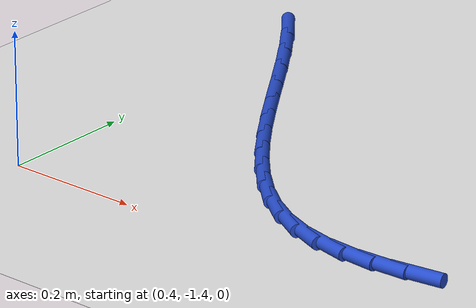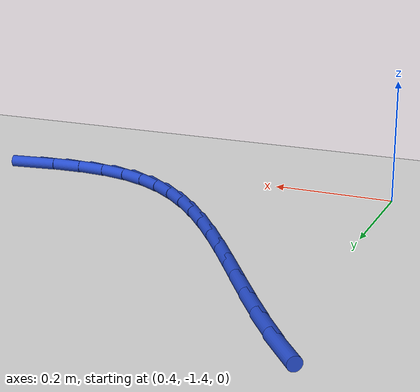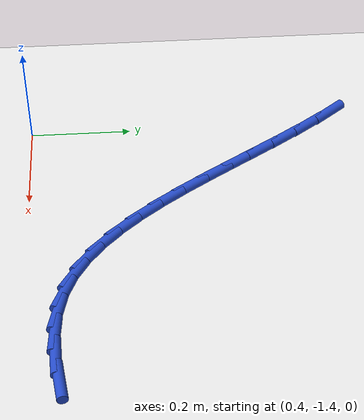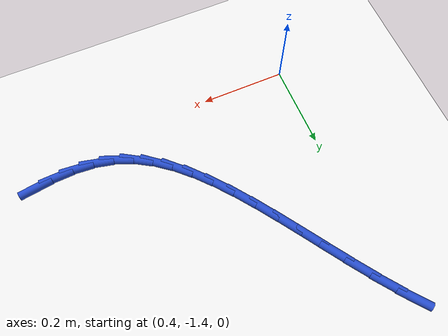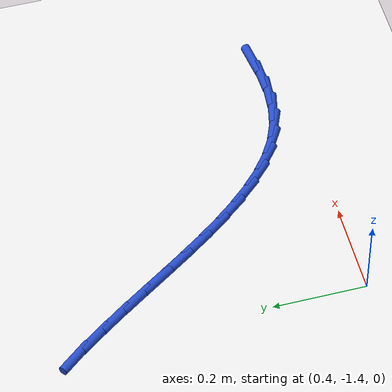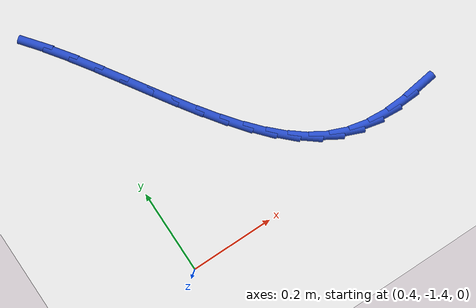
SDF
<sdf version="1.6">
 <world name="default">
  <model name="ground_plane">
   <static>1</static>
   <link name="link">
    <collision name="collision">
     <geometry><plane><normal>0 0 1</normal><size>100 100</size></plane></geometry>
     <surface><friction><ode><mu>100</mu><mu2>50</mu2></ode></friction></surface>
    </collision>
    <visual name="visual">
     <cast_shadows>0</cast_shadows>
     <geometry><plane><normal>0 0 1</normal><size>100 100</size></plane></geometry>
     <material>
      <script><uri>file://media/materials/scripts/gazebo.material</uri><name>Gazebo/WhiteGlow</name></script>
     </material>
    </visual>
   </link>
  </model>
  <model name="line">
   <link name="link_107">
    <pose>1.0430760242254884 -1.3357134529709138 0.01 0 1.57 0.13709894157882074</pose>
    <collision name="collision">
     <geometry><cylinder><radius>0.01</radius><length>0.08</length></cylinder></geometry>
    </collision>
    <visual name="visual">
     <material>
      <script><name>Gazebo/Blue</name><uri>file://media/materials/scripts/gazebo.material</uri></script>
     </material>
     <geometry><cylinder><radius>0.01</radius><length>0.08</length></cylinder></geometry>
    </visual>
   </link>
   <link name="link_108">
    <pose>0.9921345688481847 -1.3427415615859193 0.01 0 1.57 0.04142560302856046</pose>
    <collision name="collision">
     <geometry><cylinder><radius>0.01</radius><length>0.08</length></cylinder></geometry>
    </collision>
    <visual name="visual">
     <material>
      <script><name>Gazebo/Blue</name><uri>file://media/materials/scripts/gazebo.material</uri></script>
     </material>
     <geometry><cylinder><radius>0.01</radius><length>0.08</length></cylinder></geometry>
    </visual>
   </link>
   <link name="link_109">
    <pose>0.943071536547166 -1.344775190708993 0.01 0 1.57 -0.0796514640936623</pose>
    <collision name="collision">
     <geometry><cylinder><radius>0.01</radius><length>0.08</length></cylinder></geometry>
    </collision>
    <visual name="visual">
     <material>
      <script><name>Gazebo/Blue</name><uri>file://media/materials/scripts/gazebo.material</uri></script>
     </material>
     <geometry><cylinder><radius>0.01</radius><length>0.08</length></cylinder></geometry>
    </visual>
   </link>
   <link name="link_110">
    <pose>0.8960161954813696 -1.3410192174612627 0.01 0 1.57 -0.22626862827127428</pose>
    <collision name="collision">
     <geometry><cylinder><radius>0.01</radius><length>0.08</length></cylinder></geometry>
    </collision>
    <visual name="visual">
     <material>
      <script><name>Gazebo/Blue</name><uri>file://media/materials/scripts/gazebo.material</uri></script>
     </material>
     <geometry><cylinder><radius>0.01</radius><length>0.08</length></cylinder></geometry>
    </visual>
   </link>
   <link name="link_111">
    <pose>0.8510978138097305 -1.3306785189638561 0.01 0 1.57 -0.39137221240490744</pose>
    <collision name="collision">
     <geometry><cylinder><radius>0.01</radius><length>0.08</length></cylinder></geometry>
    </collision>
    <visual name="visual">
     <material>
      <script><name>Gazebo/Blue</name><uri>file://media/materials/scripts/gazebo.material</uri></script>
     </material>
     <geometry><cylinder><radius>0.01</radius><length>0.08</length></cylinder></geometry>
    </visual>
   </link>
   <link name="link_112">
    <pose>0.8084177955625681 -1.3130661872734468 0.01 0 1.57 -0.544879120453735</pose>
    <collision name="collision">
     <geometry><cylinder><radius>0.01</radius><length>0.08</length></cylinder></geometry>
    </collision>
    <visual name="visual">
     <material>
      <script><name>Gazebo/Blue</name><uri>file://media/materials/scripts/gazebo.material</uri></script>
     </material>
     <geometry><cylinder><radius>0.01</radius><length>0.08</length></cylinder></geometry>
    </visual>
   </link>
   <link name="link_113">
    <pose>0.7678277762411726 -1.288465331691533 0.01 0 1.57 -0.6711223873459193</pose>
    <collision name="collision">
     <geometry><cylinder><radius>0.01</radius><length>0.08</length></cylinder></geometry>
    </collision>
    <visual name="visual">
     <material>
      <script><name>Gazebo/Blue</name><uri>file://media/materials/scripts/gazebo.material</uri></script>
     </material>
     <geometry><cylinder><radius>0.01</radius><length>0.08</length></cylinder></geometry>
    </visual>
   </link>
   <link name="link_114">
    <pose>0.7290476490165935 -1.2576707045705091 0.01 0 1.57 -0.7709318601798066</pose>
    <collision name="collision">
     <geometry><cylinder><radius>0.01</radius><length>0.08</length></cylinder></geometry>
    </collision>
    <visual name="visual">
     <material>
      <script><name>Gazebo/Blue</name><uri>file://media/materials/scripts/gazebo.material</uri></script>
     </material>
     <geometry><cylinder><radius>0.01</radius><length>0.08</length></cylinder></geometry>
    </visual>
   </link>
   <link name="link_115">
    <pose>0.6917961210657251 -1.2214816642665136 0.01 0 1.57 -0.8475653597141941</pose>
    <collision name="collision">
     <geometry><cylinder><radius>0.01</radius><length>0.08</length></cylinder></geometry>
    </collision>
    <visual name="visual">
     <material>
      <script><name>Gazebo/Blue</name><uri>file://media/materials/scripts/gazebo.material</uri></script>
     </material>
     <geometry><cylinder><radius>0.01</radius><length>0.08</length></cylinder></geometry>
    </visual>
   </link>
   <link name="link_116">
    <pose>0.6557918995654622 -1.1806975691356842 0.01 0 1.57 -0.9046713719500862</pose>
    <collision name="collision">
     <geometry><cylinder><radius>0.01</radius><length>0.08</length></cylinder></geometry>
    </collision>
    <visual name="visual">
     <material>
      <script><name>Gazebo/Blue</name><uri>file://media/materials/scripts/gazebo.material</uri></script>
     </material>
     <geometry><cylinder><radius>0.01</radius><length>0.08</length></cylinder></geometry>
    </visual>
   </link>
   <link name="link_117">
    <pose>0.6207536916927003 -1.1361177775341604 0.01 0 1.57 -0.9454086944009275</pose>
    <collision name="collision">
     <geometry><cylinder><radius>0.01</radius><length>0.08</length></cylinder></geometry>
    </collision>
    <visual name="visual">
     <material>
      <script><name>Gazebo/Blue</name><uri>file://media/materials/scripts/gazebo.material</uri></script>
     </material>
     <geometry><cylinder><radius>0.01</radius><length>0.08</length></cylinder></geometry>
    </visual>
   </link>
   <link name="link_118">
    <pose>0.5864002046243351 -1.0885416478180816 0.01 0 1.57 -0.9721875277346859</pose>
    <collision name="collision">
     <geometry><cylinder><radius>0.01</radius><length>0.08</length></cylinder></geometry>
    </collision>
    <visual name="visual">
     <material>
      <script><name>Gazebo/Blue</name><uri>file://media/materials/scripts/gazebo.material</uri></script>
     </material>
     <geometry><cylinder><radius>0.01</radius><length>0.08</length></cylinder></geometry>
    </visual>
   </link>
   <link name="link_119">
    <pose>0.5524501455372615 -1.038768538343586 0.01 0 1.57 -0.9866717051902123</pose>
    <collision name="collision">
     <geometry><cylinder><radius>0.01</radius><length>0.08</length></cylinder></geometry>
    </collision>
    <visual name="visual">
     <material>
      <script><name>Gazebo/Blue</name><uri>file://media/materials/scripts/gazebo.material</uri></script>
     </material>
     <geometry><cylinder><radius>0.01</radius><length>0.08</length></cylinder></geometry>
    </visual>
   </link>
   <link name="link_120">
    <pose>0.5186222216083747 -0.9875978074668126 0.01 0 1.57 -0.9898552996114325</pose>
    <collision name="collision">
     <geometry><cylinder><radius>0.01</radius><length>0.08</length></cylinder></geometry>
    </collision>
    <visual name="visual">
     <material>
      <script><name>Gazebo/Blue</name><uri>file://media/materials/scripts/gazebo.material</uri></script>
     </material>
     <geometry><cylinder><radius>0.01</radius><length>0.08</length></cylinder></geometry>
    </visual>
   </link>
   <link name="link_121">
    <pose>0.4846351400145697 -0.9358288135438997 0.01 0 1.57 -0.9821370770995493</pose>
    <collision name="collision">
     <geometry><cylinder><radius>0.01</radius><length>0.08</length></cylinder></geometry>
    </collision>
    <visual name="visual">
     <material>
      <script><name>Gazebo/Blue</name><uri>file://media/materials/scripts/gazebo.material</uri></script>
     </material>
     <geometry><cylinder><radius>0.01</radius><length>0.08</length></cylinder></geometry>
    </visual>
   </link>
   <link name="link_122">
    <pose>0.4502076079327414 -0.8842609149309858 0.01 0 1.57 -0.9633686034548294</pose>
    <collision name="collision">
     <geometry><cylinder><radius>0.01</radius><length>0.08</length></cylinder></geometry>
    </collision>
    <visual name="visual">
     <material>
      <script><name>Gazebo/Blue</name><uri>file://media/materials/scripts/gazebo.material</uri></script>
     </material>
     <geometry><cylinder><radius>0.01</radius><length>0.08</length></cylinder></geometry>
    </visual>
   </link>
   <link name="link_123">
    <pose>0.41505833253978613 -0.833693469984211 0.01 0 1.57 -0.9328750592870906</pose>
    <collision name="collision">
     <geometry><cylinder><radius>0.01</radius><length>0.08</length></cylinder></geometry>
    </collision>
    <visual name="visual">
     <material>
      <script><name>Gazebo/Blue</name><uri>file://media/materials/scripts/gazebo.material</uri></script>
     </material>
     <geometry><cylinder><radius>0.01</radius><length>0.08</length></cylinder></geometry>
    </visual>
   </link>
   <link name="link_124">
    <pose>0.37890602101259846 -0.7849258370597134 0.01 0 1.57 -0.8932496200170804</pose>
    <collision name="collision">
     <geometry><cylinder><radius>0.01</radius><length>0.08</length></cylinder></geometry>
    </collision>
    <visual name="visual">
     <material>
      <script><name>Gazebo/Blue</name><uri>file://media/materials/scripts/gazebo.material</uri></script>
     </material>
     <geometry><cylinder><radius>0.01</radius><length>0.08</length></cylinder></geometry>
    </visual>
   </link>
  </model>
 </world>
</sdf>
